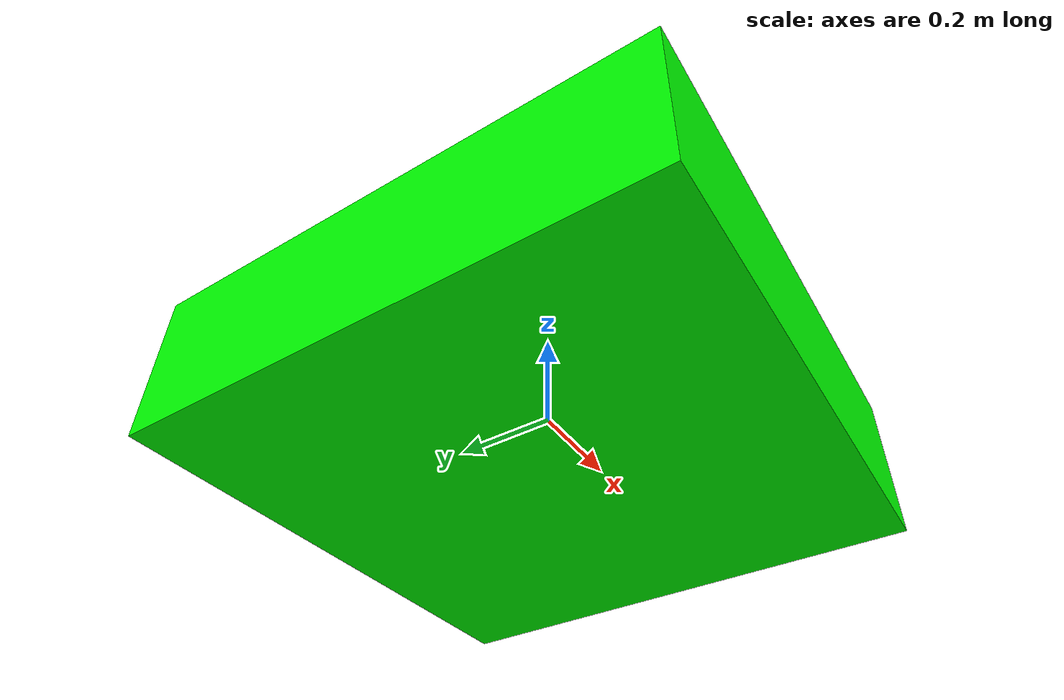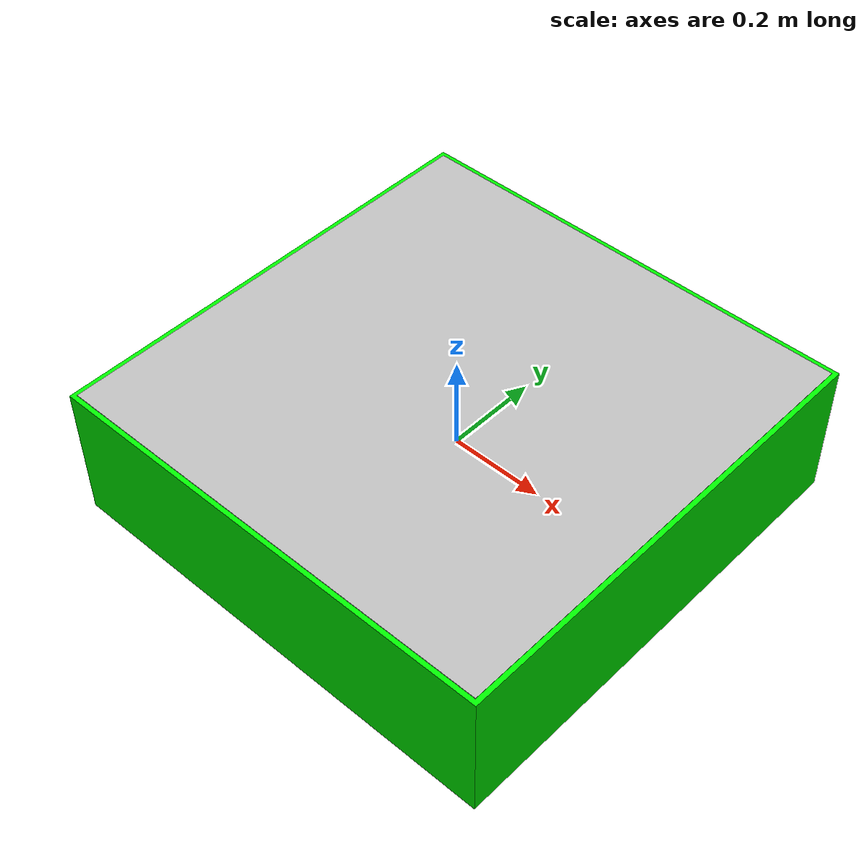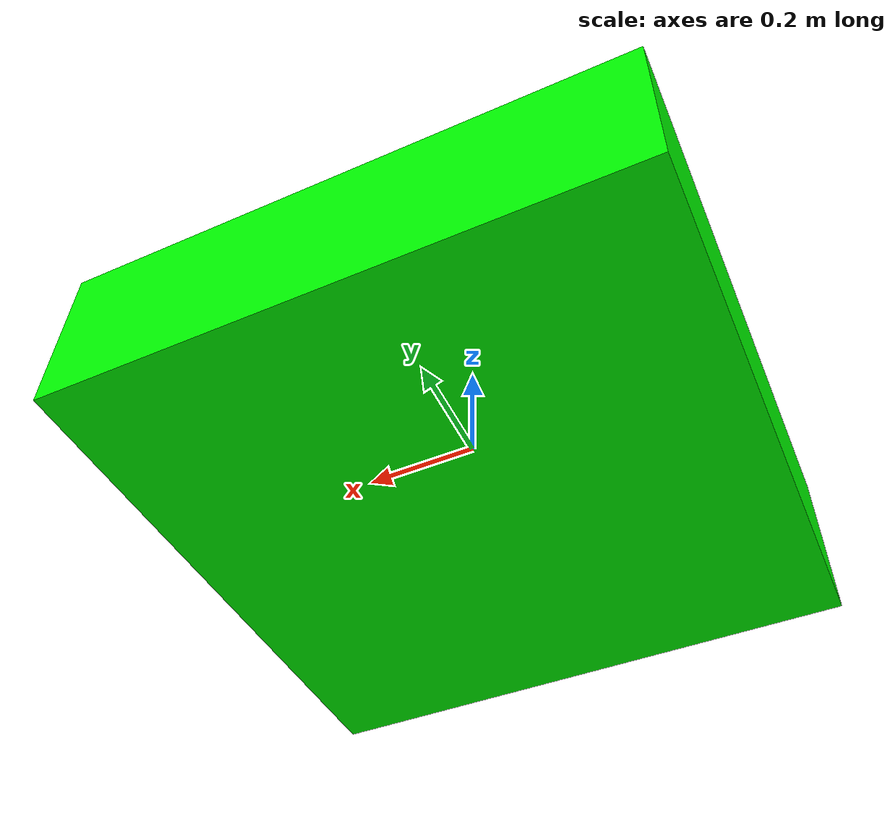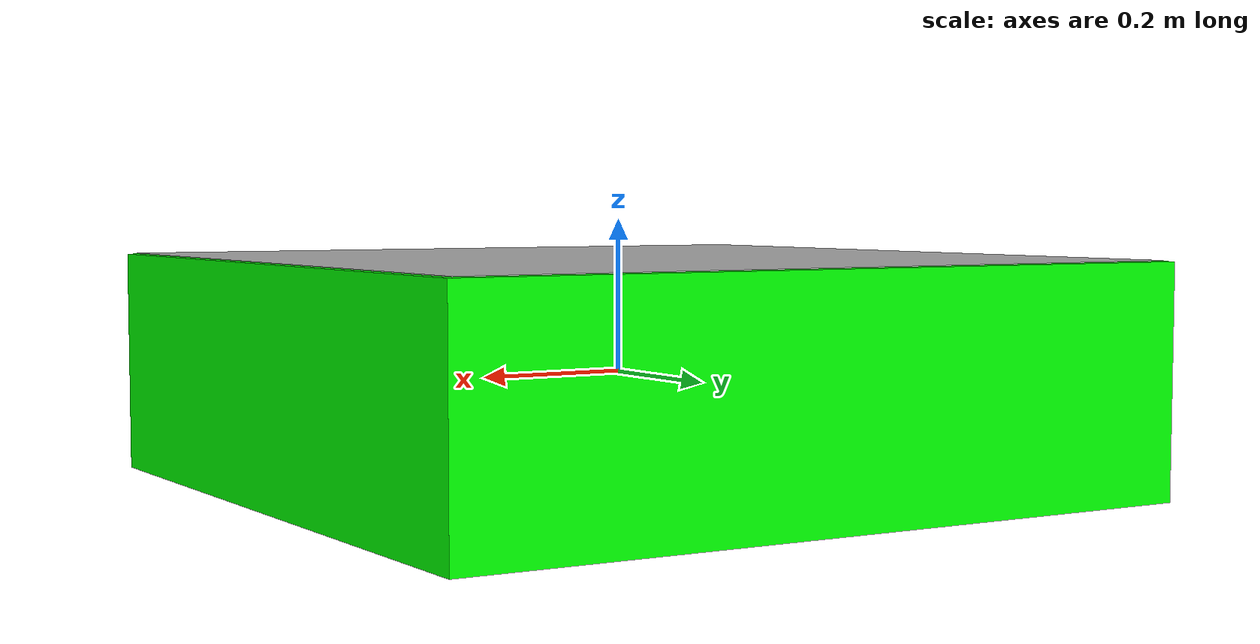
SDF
<?xml version="1.0" ?>
<sdf version="1.6">
  <model name="landing_platform">
    <static>false</static>

    <link name="platform_link">
      <inertial>
        <mass>5.0</mass>
        <inertia>
          <ixx>0.42</ixx><ixy>0</ixy><ixz>0</ixz>
          <iyy>0.42</iyy><iyz>0</iyz>
          <izz>0.83</izz>
        </inertia>
      </inertial>

      <!-- Platform base - 0.3m tall to avoid Z-fighting with ground plane -->
      <collision name="platform_collision">
        <geometry>
          <box><size>1.0 1.0 0.3</size></box>
        </geometry>
        <surface>
          <friction>
            <ode><mu>0.01</mu><mu2>0.01</mu2></ode>
          </friction>
          <contact>
            <ode>
              <min_depth>0.001</min_depth>
            </ode>
          </contact>
        </surface>
      </collision>

      <!-- Platform body - bright green -->
      <visual name="platform_visual">
        <geometry>
          <box><size>1.0 1.0 0.3</size></box>
        </geometry>
        <material>
          <ambient>0.0 0.9 0.0 1</ambient>
          <diffuse>0.0 1.0 0.0 1</diffuse>
          <specular>0.0 0.3 0.0 1</specular>
          <emissive>0.0 0.4 0.0 1</emissive>
        </material>
      </visual>

      <!-- Top face with 4 ArUco markers texture -->
      <visual name="marker_top">
        <pose>0 0 0.151 0 0 0</pose>
        <geometry>
          <box><size>0.98 0.98 0.001</size></box>
        </geometry>
        <material>
          <script>
            <uri>model://landing_platform/materials/scripts</uri>
            <uri>model://landing_platform/materials/textures</uri>
            <name>PlatformTop</name>
          </script>
        </material>
      </visual>
    </link>

    <!-- Planar move plugin for ground movement -->
    <plugin name="planar_move" filename="libgazebo_ros_planar_move.so">
      <ros>
        <namespace>platform</namespace>
        <remapping>cmd_vel:=cmd_vel</remapping>
        <remapping>odom:=odom</remapping>
      </ros>
      <update_rate>50</update_rate>
      <publish_rate>50</publish_rate>
      <publish_odom>true</publish_odom>
      <publish_odom_tf>false</publish_odom_tf>
      <odometry_frame>world</odometry_frame>
      <robot_base_frame>platform_link</robot_base_frame>
    </plugin>
  </model>
</sdf>
